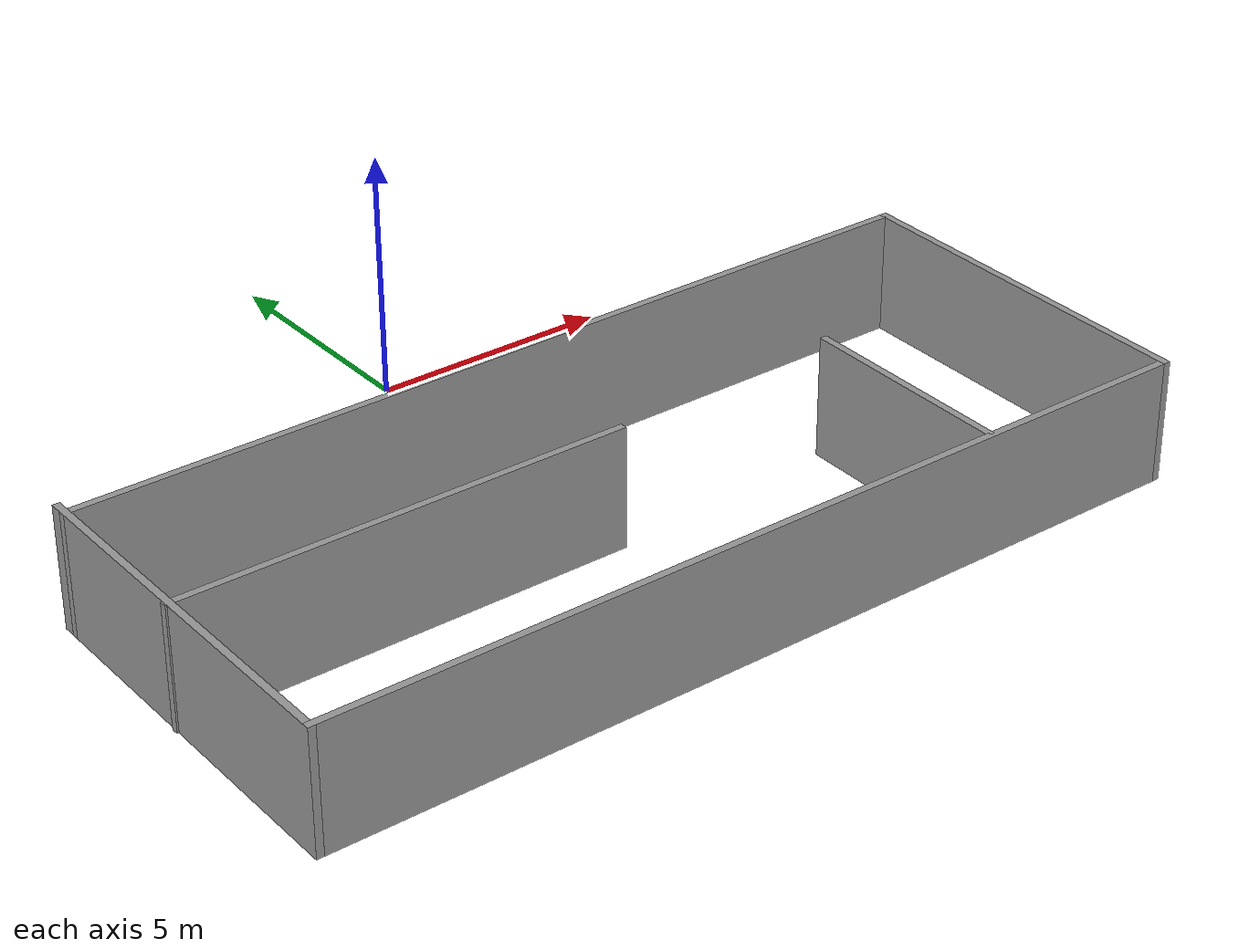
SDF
<?xml version='1.0'?>
<sdf version='1.7'>
  <model name='World'>
    <pose>0.270087 -5.78465 0 0 -0 0</pose>
    <link name='Wall_13'>
      <collision name='Wall_13_Collision'>
        <geometry>
          <box>
            <size>8 0.15 2.5</size>
          </box>
        </geometry>
        <pose>0 0 1.25 0 -0 0</pose>
      </collision>
      <visual name='Wall_13_Visual'>
        <pose>0 0 1.25 0 -0 0</pose>
        <geometry>
          <box>
            <size>8 0.15 2.5</size>
          </box>
        </geometry>
        <material>
          <script>
            <uri>file://media/materials/scripts/gazebo.material</uri>
            <name>Gazebo/Grey</name>
          </script>
          <ambient>1 1 1 1</ambient>
        </material>
        <meta>
          <layer>0</layer>
        </meta>
      </visual>
      <pose>-9.15775 -1.78466 0 0 -0 -1.5708</pose>
    </link>
    <link name='Wall_14'>
      <collision name='Wall_14_Collision'>
        <geometry>
          <box>
            <size>18.5 0.15 2.5</size>
          </box>
        </geometry>
        <pose>0 0 1.25 0 -0 0</pose>
      </collision>
      <visual name='Wall_14_Visual'>
        <pose>0 0 1.25 0 -0 0</pose>
        <geometry>
          <box>
            <size>18.5 0.15 2.5</size>
          </box>
        </geometry>
        <material>
          <script>
            <uri>file://media/materials/scripts/gazebo.material</uri>
            <name>Gazebo/Grey</name>
          </script>
          <ambient>1 1 1 1</ambient>
        </material>
        <meta>
          <layer>0</layer>
        </meta>
      </visual>
      <pose>0.01725 -5.70965 0 0 -0 0</pose>
    </link>
    <link name='Wall_15'>
      <collision name='Wall_15_Collision'>
        <geometry>
          <box>
            <size>7.75 0.15 2.5</size>
          </box>
        </geometry>
        <pose>0 0 1.25 0 -0 0</pose>
      </collision>
      <visual name='Wall_15_Visual'>
        <pose>0 0 1.25 0 -0 0</pose>
        <geometry>
          <box>
            <size>7.75 0.15 2.5</size>
          </box>
        </geometry>
        <material>
          <script>
            <uri>file://media/materials/scripts/gazebo.material</uri>
            <name>Gazebo/Grey</name>
          </script>
          <ambient>1 1 1 1</ambient>
        </material>
        <meta>
          <layer>0</layer>
        </meta>
      </visual>
      <pose>9.19225 -1.90966 0 0 -0 1.5708</pose>
    </link>
    <link name='Wall_16'>
      <collision name='Wall_16_Collision'>
        <geometry>
          <box>
            <size>18.5 0.15 2.5</size>
          </box>
        </geometry>
        <pose>0 0 1.25 0 -0 0</pose>
      </collision>
      <visual name='Wall_16_Visual'>
        <pose>0 0 1.25 0 -0 0</pose>
        <geometry>
          <box>
            <size>18.5 0.15 2.5</size>
          </box>
        </geometry>
        <material>
          <script>
            <uri>file://media/materials/scripts/gazebo.material</uri>
            <name>Gazebo/Grey</name>
          </script>
          <ambient>1 1 1 1</ambient>
        </material>
        <meta>
          <layer>0</layer>
        </meta>
      </visual>
      <pose>0.01725 1.89035 0 0 -0 3.14159</pose>
    </link>
    <link name='Wall_18'>
      <collision name='Wall_18_Collision'>
        <geometry>
          <box>
            <size>9.25 0.15 2.5</size>
          </box>
        </geometry>
        <pose>0 0 1.25 0 -0 0</pose>
      </collision>
      <visual name='Wall_18_Visual'>
        <pose>0 0 1.25 0 -0 0</pose>
        <geometry>
          <box>
            <size>9.25 0.15 2.5</size>
          </box>
        </geometry>
        <material>
          <script>
            <uri>file://media/materials/scripts/gazebo.material</uri>
            <name>Gazebo/Grey</name>
          </script>
          <ambient>1 1 1 1</ambient>
        </material>
        <meta>
          <layer>0</layer>
        </meta>
      </visual>
      <pose>-4.64225 -1.53965 0 0 -0 0</pose>
    </link>
    <link name='Wall_20'>
      <collision name='Wall_20_Collision'>
        <geometry>
          <box>
            <size>4.5 0.15 2.5</size>
          </box>
        </geometry>
        <pose>0 0 1.25 0 -0 0</pose>
      </collision>
      <visual name='Wall_20_Visual'>
        <pose>0 0 1.25 0 -0 0</pose>
        <geometry>
          <box>
            <size>4.5 0.15 2.5</size>
          </box>
        </geometry>
        <material>
          <script>
            <uri>file://media/materials/scripts/gazebo.material</uri>
            <name>Gazebo/Grey</name>
          </script>
          <ambient>1 1 1 1</ambient>
        </material>
        <meta>
          <layer>0</layer>
        </meta>
      </visual>
      <pose>4.88375 -3.45865 0 0 -0 1.5708</pose>
    </link>
    <static>1</static>
  </model>
</sdf>
